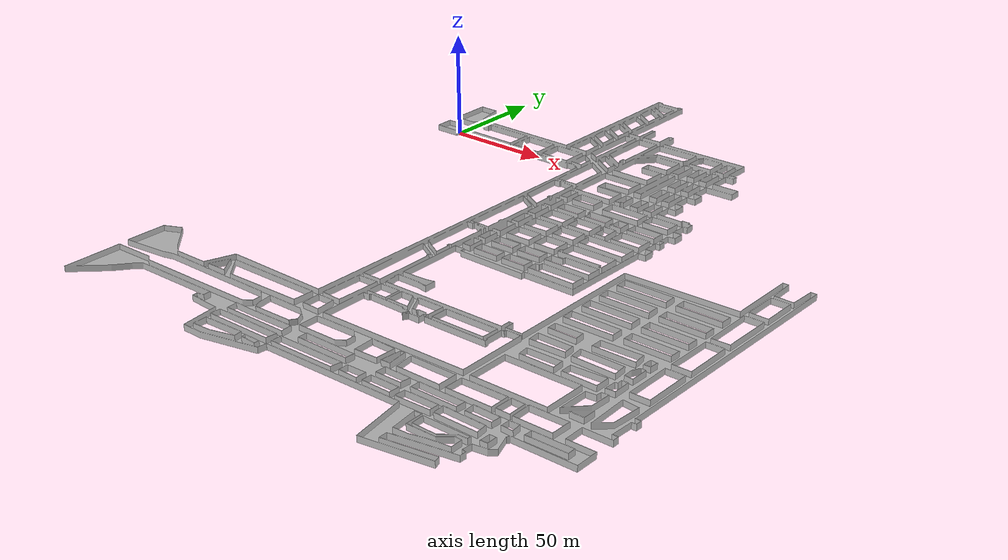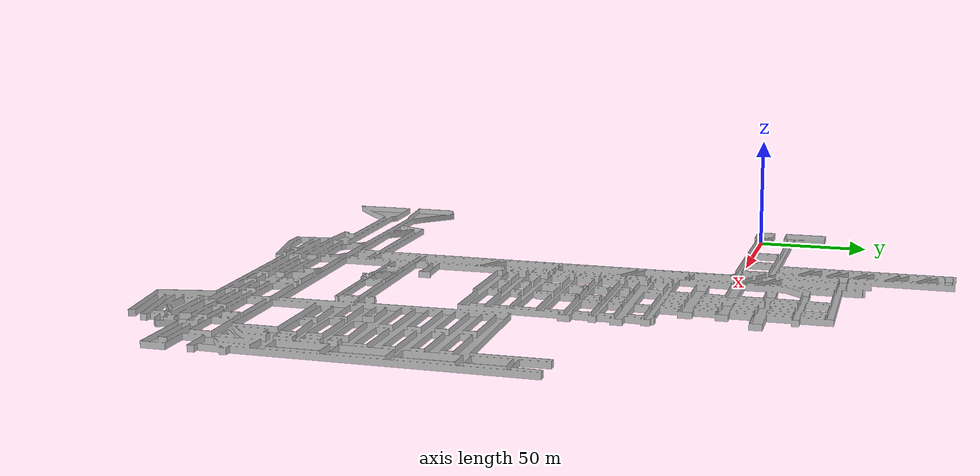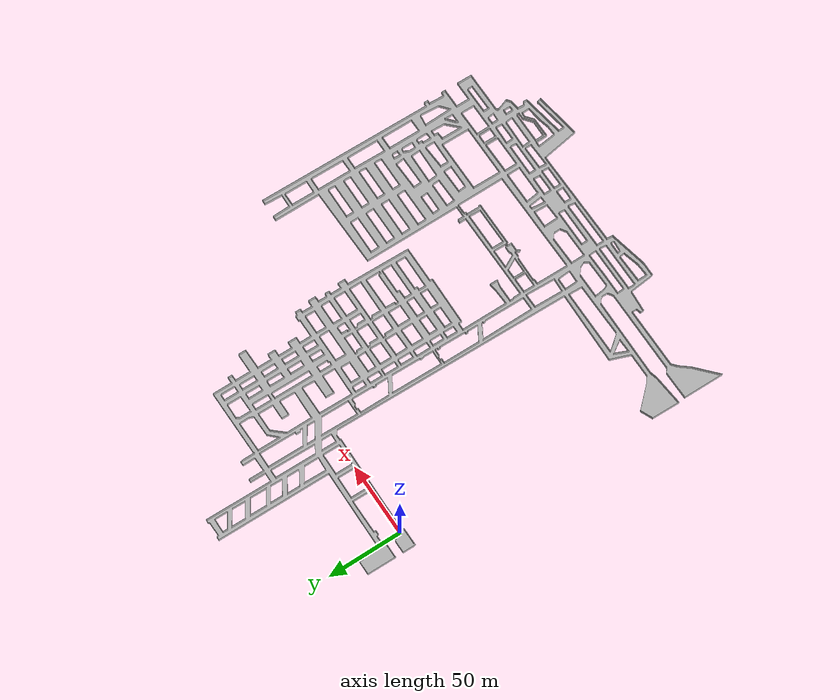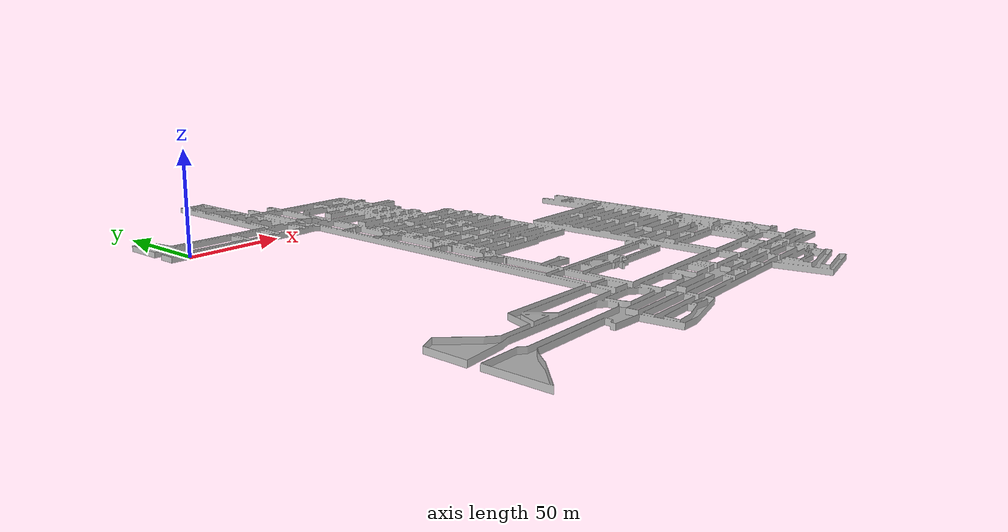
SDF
<?xml version="1.0"?>
<sdf version="1.6">
 <model name="pittsburgh_mine">
   <pose>-22.0 92.5 0 0 0 0</pose>
   <static>true</static>
   <link name="link">
     <collision name="collision">
       <geometry>
         <mesh>
           <uri>model://pittsburgh_mine/pittsburgh_mine.dae</uri>
         </mesh>
       </geometry>
     </collision>
     <visual name="visual">
       <geometry>
         <mesh>
           <uri>model://pittsburgh_mine/pittsburgh_mine.dae</uri>
         </mesh>
       </geometry>
     </visual>
   </link>
 </model>
</sdf>
